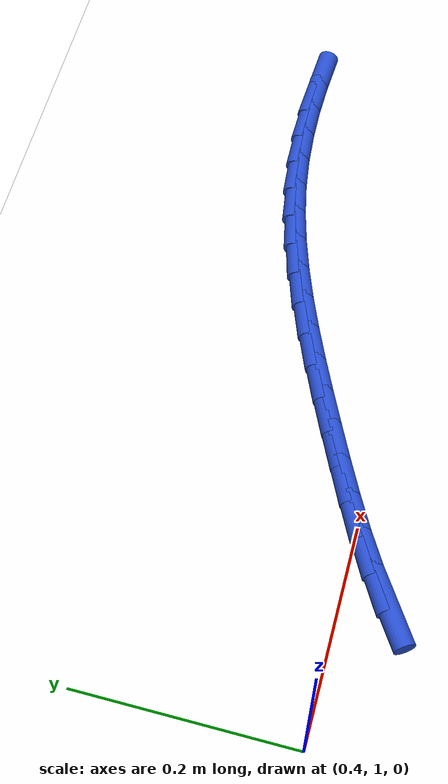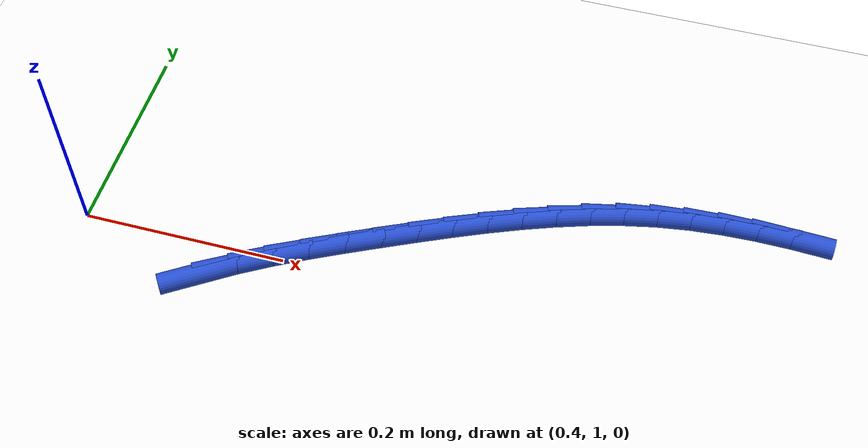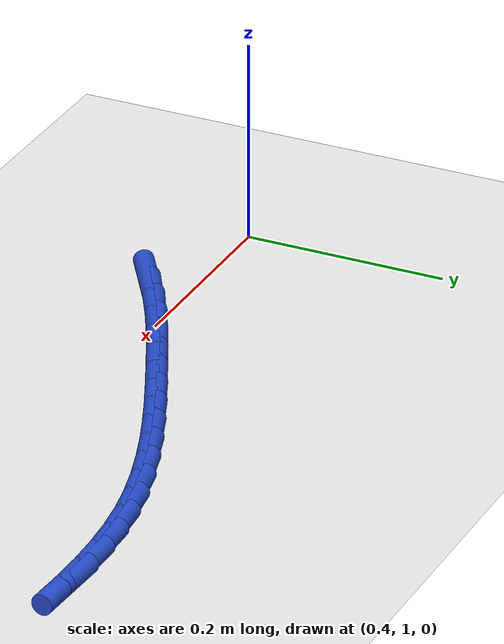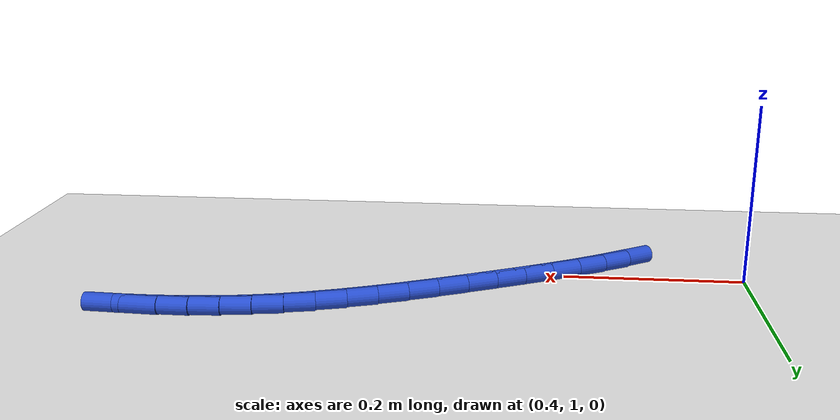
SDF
<sdf version="1.6">
 <world name="default">
  <model name="ground_plane">
   <static>1</static>
   <link name="link">
    <collision name="collision">
     <geometry><plane><normal>0 0 1</normal><size>100 100</size></plane></geometry>
     <surface><friction><ode><mu>100</mu><mu2>50</mu2></ode></friction></surface>
    </collision>
    <visual name="visual">
     <cast_shadows>0</cast_shadows>
     <geometry><plane><normal>0 0 1</normal><size>100 100</size></plane></geometry>
     <material>
      <script><uri>file://media/materials/scripts/gazebo.material</uri><name>Gazebo/WhiteGlow</name></script>
     </material>
    </visual>
   </link>
  </model>
  <model name="line">
   <link name="link_34">
    <pose>0.5341133315458985 0.9610245581360544 0.01 0 1.57 0.5813178647892413</pose>
    <collision name="collision">
     <geometry><cylinder><radius>0.01</radius><length>0.08</length></cylinder></geometry>
    </collision>
    <visual name="visual">
     <material>
      <script><name>Gazebo/Blue</name><uri>file://media/materials/scripts/gazebo.material</uri></script>
     </material>
     <geometry><cylinder><radius>0.01</radius><length>0.08</length></cylinder></geometry>
    </visual>
   </link>
   <link name="link_35">
    <pose>0.5619509197238134 0.9793153465027213 0.01 0 1.57 0.5308592978552239</pose>
    <collision name="collision">
     <geometry><cylinder><radius>0.01</radius><length>0.08</length></cylinder></geometry>
    </collision>
    <visual name="visual">
     <material>
      <script><name>Gazebo/Blue</name><uri>file://media/materials/scripts/gazebo.material</uri></script>
     </material>
     <geometry><cylinder><radius>0.01</radius><length>0.08</length></cylinder></geometry>
    </visual>
   </link>
   <link name="link_36">
    <pose>0.5910504674761693 0.9963988729436012 0.01 0 1.57 0.49290976307720036</pose>
    <collision name="collision">
     <geometry><cylinder><radius>0.01</radius><length>0.08</length></cylinder></geometry>
    </collision>
    <visual name="visual">
     <material>
      <script><name>Gazebo/Blue</name><uri>file://media/materials/scripts/gazebo.material</uri></script>
     </material>
     <geometry><cylinder><radius>0.01</radius><length>0.08</length></cylinder></geometry>
    </visual>
   </link>
   <link name="link_37">
    <pose>0.6210909806658925 1.0125345808446884 0.01 0 1.57 0.46669809042227167</pose>
    <collision name="collision">
     <geometry><cylinder><radius>0.01</radius><length>0.08</length></cylinder></geometry>
    </collision>
    <visual name="visual">
     <material>
      <script><name>Gazebo/Blue</name><uri>file://media/materials/scripts/gazebo.material</uri></script>
     </material>
     <geometry><cylinder><radius>0.01</radius><length>0.08</length></cylinder></geometry>
    </visual>
   </link>
   <link name="link_38">
    <pose>0.6517514651559089 1.0279819135919779 0.01 0 1.57 0.451655828998194</pose>
    <collision name="collision">
     <geometry><cylinder><radius>0.01</radius><length>0.08</length></cylinder></geometry>
    </collision>
    <visual name="visual">
     <material>
      <script><name>Gazebo/Blue</name><uri>file://media/materials/scripts/gazebo.material</uri></script>
     </material>
     <geometry><cylinder><radius>0.01</radius><length>0.08</length></cylinder></geometry>
    </visual>
   </link>
   <link name="link_39">
    <pose>0.6827109268091447 1.0430003145714644 0.01 0 1.57 0.4446764041633225</pose>
    <collision name="collision">
     <geometry><cylinder><radius>0.01</radius><length>0.08</length></cylinder></geometry>
    </collision>
    <visual name="visual">
     <material>
      <script><name>Gazebo/Blue</name><uri>file://media/materials/scripts/gazebo.material</uri></script>
     </material>
     <geometry><cylinder><radius>0.01</radius><length>0.08</length></cylinder></geometry>
    </visual>
   </link>
   <link name="link_40">
    <pose>0.7137035463838828 1.057768484678155 0.01 0 1.57 0.43388995854553764</pose>
    <collision name="collision">
     <geometry><cylinder><radius>0.01</radius><length>0.08</length></cylinder></geometry>
    </collision>
    <visual name="visual">
     <material>
      <script><name>Gazebo/Blue</name><uri>file://media/materials/scripts/gazebo.material</uri></script>
     </material>
     <geometry><cylinder><radius>0.01</radius><length>0.08</length></cylinder></geometry>
    </visual>
   </link>
   <link name="link_41">
    <pose>0.7446941517880932 1.0721275976530067 0.01 0 1.57 0.41604636014040325</pose>
    <collision name="collision">
     <geometry><cylinder><radius>0.01</radius><length>0.08</length></cylinder></geometry>
    </collision>
    <visual name="visual">
     <material>
      <script><name>Gazebo/Blue</name><uri>file://media/materials/scripts/gazebo.material</uri></script>
     </material>
     <geometry><cylinder><radius>0.01</radius><length>0.08</length></cylinder></geometry>
    </visual>
   </link>
   <link name="link_42">
    <pose>0.7757078306839538 1.0858306436051008 0.01 0 1.57 0.39087675499155444</pose>
    <collision name="collision">
     <geometry><cylinder><radius>0.01</radius><length>0.08</length></cylinder></geometry>
    </collision>
    <visual name="visual">
     <material>
      <script><name>Gazebo/Blue</name><uri>file://media/materials/scripts/gazebo.material</uri></script>
     </material>
     <geometry><cylinder><radius>0.01</radius><length>0.08</length></cylinder></geometry>
    </visual>
   </link>
   <link name="link_43">
    <pose>0.8067696709166298 1.0986306123757341 0.01 0 1.57 0.3580446325179453</pose>
    <collision name="collision">
     <geometry><cylinder><radius>0.01</radius><length>0.08</length></cylinder></geometry>
    </collision>
    <visual name="visual">
     <material>
      <script><name>Gazebo/Blue</name><uri>file://media/materials/scripts/gazebo.material</uri></script>
     </material>
     <geometry><cylinder><radius>0.01</radius><length>0.08</length></cylinder></geometry>
    </visual>
   </link>
   <link name="link_44">
    <pose>0.8379047603312868 1.1102804938062052 0.01 0 1.57 0.3171804982124579</pose>
    <collision name="collision">
     <geometry><cylinder><radius>0.01</radius><length>0.08</length></cylinder></geometry>
    </collision>
    <visual name="visual">
     <material>
      <script><name>Gazebo/Blue</name><uri>file://media/materials/scripts/gazebo.material</uri></script>
     </material>
     <geometry><cylinder><radius>0.01</radius><length>0.08</length></cylinder></geometry>
    </visual>
   </link>
   <link name="link_45">
    <pose>0.8691381867730895 1.1205332777378114 0.01 0 1.57 0.2679375033169996</pose>
    <collision name="collision">
     <geometry><cylinder><radius>0.01</radius><length>0.08</length></cylinder></geometry>
    </collision>
    <visual name="visual">
     <material>
      <script><name>Gazebo/Blue</name><uri>file://media/materials/scripts/gazebo.material</uri></script>
     </material>
     <geometry><cylinder><radius>0.01</radius><length>0.08</length></cylinder></geometry>
    </visual>
   </link>
   <link name="link_46">
    <pose>0.9004950380872039 1.129141954011851 0.01 0 1.57 0.21007408411947323</pose>
    <collision name="collision">
     <geometry><cylinder><radius>0.01</radius><length>0.08</length></cylinder></geometry>
    </collision>
    <visual name="visual">
     <material>
      <script><name>Gazebo/Blue</name><uri>file://media/materials/scripts/gazebo.material</uri></script>
     </material>
     <geometry><cylinder><radius>0.01</radius><length>0.08</length></cylinder></geometry>
    </visual>
   </link>
   <link name="link_47">
    <pose>0.9320004023280446 1.1358595244780794 0.01 0 1.57 0.14637469811863807</pose>
    <collision name="collision">
     <geometry><cylinder><radius>0.01</radius><length>0.08</length></cylinder></geometry>
    </collision>
    <visual name="visual">
     <material>
      <script><name>Gazebo/Blue</name><uri>file://media/materials/scripts/gazebo.material</uri></script>
     </material>
     <geometry><cylinder><radius>0.01</radius><length>0.08</length></cylinder></geometry>
    </visual>
   </link>
   <link name="link_48">
    <pose>0.9636809562007738 1.1405301607179192 0.01 0 1.57 0.08691518619179942</pose>
    <collision name="collision">
     <geometry><cylinder><radius>0.01</radius><length>0.08</length></cylinder></geometry>
    </collision>
    <visual name="visual">
     <material>
      <script><name>Gazebo/Blue</name><uri>file://media/materials/scripts/gazebo.material</uri></script>
     </material>
     <geometry><cylinder><radius>0.01</radius><length>0.08</length></cylinder></geometry>
    </visual>
   </link>
   <link name="link_49">
    <pose>0.9955687897841753 1.1433086978248095 0.01 0 1.57 0.03445390394666366</pose>
    <collision name="collision">
     <geometry><cylinder><radius>0.01</radius><length>0.08</length></cylinder></geometry>
    </collision>
    <visual name="visual">
     <material>
      <script><name>Gazebo/Blue</name><uri>file://media/materials/scripts/gazebo.material</uri></script>
     </material>
     <geometry><cylinder><radius>0.01</radius><length>0.08</length></cylinder></geometry>
    </visual>
   </link>
   <link name="link_50">
    <pose>1.027697145179128 1.1444160833121484 0.01 0 1.57 -0.010579734764060546</pose>
    <collision name="collision">
     <geometry><cylinder><radius>0.01</radius><length>0.08</length></cylinder></geometry>
    </collision>
    <visual name="visual">
     <material>
      <script><name>Gazebo/Blue</name><uri>file://media/materials/scripts/gazebo.material</uri></script>
     </material>
     <geometry><cylinder><radius>0.01</radius><length>0.08</length></cylinder></geometry>
    </visual>
   </link>
   <link name="link_51">
    <pose>1.0600992644865117 1.1440732646933347 0.01 0 1.57 -0.04802532571994697</pose>
    <collision name="collision">
     <geometry><cylinder><radius>0.01</radius><length>0.08</length></cylinder></geometry>
    </collision>
    <visual name="visual">
     <material>
      <script><name>Gazebo/Blue</name><uri>file://media/materials/scripts/gazebo.material</uri></script>
     </material>
     <geometry><cylinder><radius>0.01</radius><length>0.08</length></cylinder></geometry>
    </visual>
   </link>
  </model>
 </world>
</sdf>
